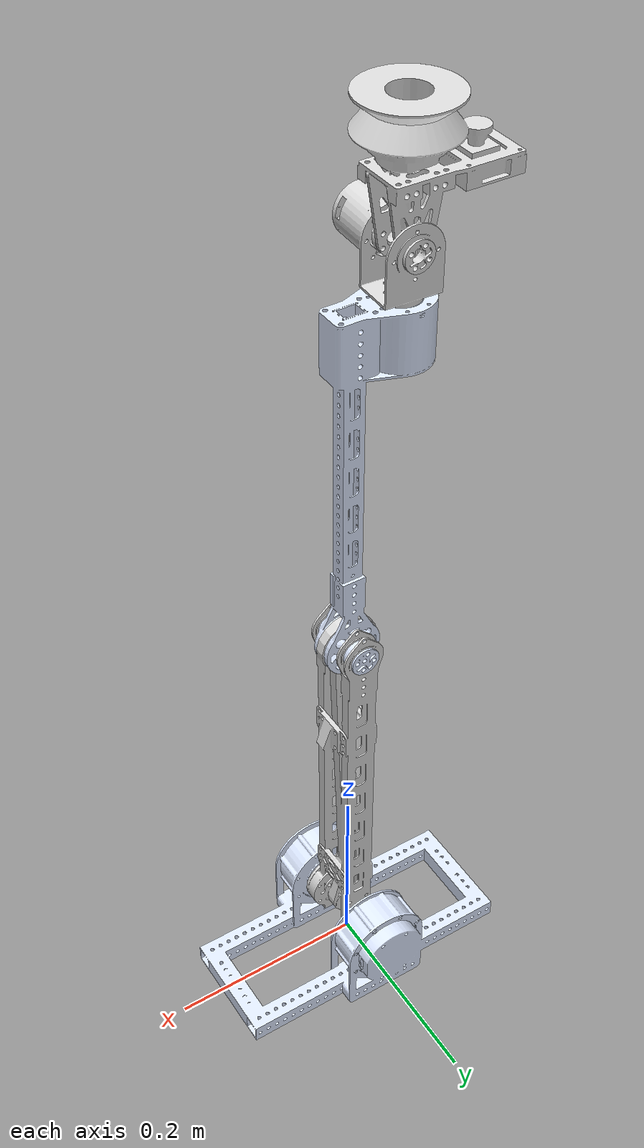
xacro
<?xml version="1.0"?>
<robot name="robotic_arm" xmlns:xacro="http://www.ros.org/wiki/xacro">

  <!-- ======================= 可配置参数（launch 里透传） ======================= -->
  <!-- MJCF 场景入口：scene_torque.xml 里 include 了力矩版本体 robotic_arm_torque.xml。
       力矩控制必须走这一份（motor 执行器）；position 版 scene.xml 仍保留作回退。 -->
  <xacro:arg name="mujoco_model" default="$(find kdl_tools)/model/scene_torque.xml"/>
  <!-- true = 不开 MuJoCo 图形窗口（远程/CI 调试用） -->
  <xacro:arg name="headless" default="false"/>
  <!-- 仿真时间 / 墙钟时间 的倍率；>0 时忽略 MuJoCo 窗口里的实时率滑块 -->
  <xacro:arg name="sim_speed_factor" default="1.0"/>

  <xacro:property name="mujoco_model_path" value="$(arg mujoco_model)"/>
  <xacro:property name="headless_flag" value="$(arg headless)"/>
  <xacro:property name="speed_factor" value="$(arg sim_speed_factor)"/>

  <!-- ======================= 1. 机器人本体（唯一真源） ======================= -->
  <xacro:include filename="$(find kdl_tools)/model/robotic_arm.urdf"/>

  <ros2_control name="arm_hw" type="system">
    <hardware>
      <!-- 必须与 mujoco_ros2_control 导出的插件类名完全一致 -->
      <plugin>mujoco_ros2_control/MujocoSystemInterface</plugin>

      <!-- MJCF 文件：插件用 mj_loadXML 读它，路径必须真实存在（不含 ~ 或环境变量） -->
      <param name="mujoco_model">${mujoco_model_path}</param>
      <param name="headless">${headless_flag}</param>
      <param name="sim_speed_factor">${speed_factor}</param>

    </hardware>

    <!-- 关节 ↔ 接口声明。四个关节接口完全相同，用宏展开避免手抄四遍。 -->
    <xacro:macro name="arm_joint" params="name">
      <joint name="${name}">
        <command_interface name="effort"/>
        <!-- 状态接口：插件每个控制周期从 mjData 里取 qpos / qvel / qfrc_actuator。
             position/velocity 供 kdl_effort_controller 做 PID 反馈；
             effort 供上层观测实际施加的力矩。 -->
        <state_interface name="position">
          <param name="initial_value">0.0</param>
        </state_interface>
        <state_interface name="velocity"/>
        <state_interface name="effort"/>
      </joint>
    </xacro:macro>

    <xacro:arm_joint name="joint1"/>
    <xacro:arm_joint name="joint2"/>
    <xacro:arm_joint name="joint3"/>
    <xacro:arm_joint name="joint4"/>

  </ros2_control>
</robot>

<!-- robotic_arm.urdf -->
<robot
  name="robotic_arm">
  <link
    name="base_link">
    <inertial>
      <origin
        xyz="-9.52016243616072E-15 -1.94289029309402E-16 0.0155191781345583"
        rpy="0 0 0" />
      <mass
        value="0.446116144380579" />
      <inertia
        ixx="0.000224798050494485"
        ixy="-2.18020596920716E-10"
        ixz="-7.25060202849681E-19"
        iyy="0.00138255058840876"
        iyz="-2.37030607855116E-20"
        izz="0.00122839549734328" />
    </inertial>
    <visual>
      <origin
        xyz="0 0 0"
        rpy="0 0 0" />
      <geometry>
        <mesh
          filename="package://kdl_tools/model/base_link.STL" />
      </geometry>
      <material
        name="">
        <color
          rgba="0.866666666666667 0.909803921568627 1 1" />
      </material>
    </visual>
    <collision>
      <origin
        xyz="0 0 0"
        rpy="0 0 0" />
      <geometry>
        <mesh
          filename="package://kdl_tools/model/base_link.STL" />
      </geometry>
    </collision>
  </link>
  <link
    name="link1">
    <inertial>
      <origin
        xyz="0.150031524729698 0.000191995103078102 0.0344853139404591"
        rpy="0 0 0" />
      <mass
        value="0.43178795433662" />
      <inertia
        ixx="5.96075244798525E-05"
        ixy="-4.07370544541132E-06"
        ixz="-1.02661773419375E-07"
        iyy="0.00272008694008324"
        iyz="2.06377860208473E-08"
        izz="0.00274655104559429" />
    </inertial>
    <visual>
      <origin
        xyz="0 0 0"
        rpy="0 0 0" />
      <geometry>
        <mesh
          filename="package://kdl_tools/model/link1.STL" />
      </geometry>
      <material
        name="">
        <color
          rgba="0.847058823529412 0.847058823529412 0.847058823529412 1" />
      </material>
    </visual>
    <collision>
      <origin
        xyz="0 0 0"
        rpy="0 0 0" />
      <geometry>
        <mesh
          filename="package://kdl_tools/model/link1.STL" />
      </geometry>
    </collision>
  </link>
  <joint
    name="joint1"
    type="revolute">
    <origin
      xyz="0 -0.04 0.05"
      rpy="1.5708 -1.57 -3.1416" />
    <parent
      link="base_link" />
    <child
      link="link1" />
    <axis
      xyz="0 0 1" />
    <limit
      lower="-1.57"
      upper="1.57"
      effort="50"
      velocity="10" />
  </joint>
  <link
    name="link2">
    <inertial>
      <origin
        xyz="0.205484012122796 -0.00549986783103082 0.0186225676272804"
        rpy="0 0 0" />
      <mass
        value="0.334546886253206" />
      <inertia
        ixx="9.93613919225459E-05"
        ixy="8.10971210408094E-10"
        ixz="-4.61050169328864E-09"
        iyy="0.000582195736690295"
        iyz="5.70676865975426E-09"
        izz="0.000556148638754133" />
    </inertial>
    <visual>
      <origin
        xyz="0 0 0"
        rpy="0 0 0" />
      <geometry>
        <mesh
          filename="package://kdl_tools/model/link2.STL" />
      </geometry>
      <material
        name="">
        <color
          rgba="0.866666666666667 0.909803921568627 1 1" />
      </material>
    </visual>
    <collision>
      <origin
        xyz="0 0 0"
        rpy="0 0 0" />
      <geometry>
        <mesh
          filename="package://kdl_tools/model/link2.STL" />
      </geometry>
    </collision>
  </link>
  <joint
    name="joint2"
    type="revolute">
    <origin
      xyz="0.374 0 0.0401"
      rpy="1.5708 0.0 0.0" />
    <parent
      link="link1" />
    <child
      link="link2" />
    <axis
      xyz="0 -1 0" />
    <limit
      lower="-3.0"
      upper="3.0"
      effort="50"
      velocity="10" />
  </joint>
  <link
    name="link3">
    <inertial>
      <origin
        xyz="0.00045693106510647 0.0120159218838146 0.0326962826671975"
        rpy="0 0 0" />
      <mass
        value="0.0818036914981158" />
      <inertia
        ixx="2.58771620872542E-05"
        ixy="1.52000429986836E-07"
        ixz="1.71868944443329E-08"
        iyy="3.05802737829727E-05"
        iyz="3.75710826679309E-07"
        izz="2.3497726615304E-05" />
    </inertial>
    <visual>
      <origin
        xyz="0 0 0"
        rpy="0 0 0" />
      <geometry>
        <mesh
          filename="package://kdl_tools/model/link3.STL" />
      </geometry>
      <material
        name="">
        <color
          rgba="0.847058823529412 0.847058823529412 0.847058823529412 1" />
      </material>
    </visual>
    <collision>
      <origin
        xyz="0 0 0"
        rpy="0 0 0" />
      <geometry>
        <mesh
          filename="package://kdl_tools/model/link3.STL" />
      </geometry>
    </collision>
  </link>
  <joint
    name="joint3"
    type="revolute">
    <origin
      xyz="0.3384 -0.0055 0.045"
      rpy="-1.5708 -1.5708 -1.5708" />
    <parent
      link="link2" />
    <child
      link="link3" />
    <axis
      xyz="0 0 1" />
    <limit
      lower="-3.14"
      upper="3.14"
      effort="50"
      velocity="10" />
  </joint>
  <link
    name="link4">
    <inertial>
      <origin
        xyz="0.0717111929893778 -0.0115466248724582 0.0198054015294321"
        rpy="0 0 0" />
      <mass
        value="0.269974503355347" />
      <inertia
        ixx="0.000158676016051897"
        ixy="7.59760657382795E-08"
        ixz="5.56013658017894E-08"
        iyy="0.000126778289759083"
        iyz="2.07997464437305E-09"
        izz="0.000154960757569298" />
    </inertial>
    <visual>
      <origin
        xyz="0 0 0"
        rpy="0 0 0" />
      <geometry>
        <mesh
          filename="package://kdl_tools/model/link4.STL" />
      </geometry>
      <material
        name="">
        <color
          rgba="0.847058823529412 0.847058823529412 0.847058823529412 1" />
      </material>
    </visual>
    <collision>
      <origin
        xyz="0 0 0"
        rpy="0 0 0" />
      <geometry>
        <mesh
          filename="package://kdl_tools/model/link4.STL" />
      </geometry>
    </collision>
  </link>
  <joint
    name="joint4"
    type="revolute">
    <origin
      xyz="0.00079568 0.018983 0.043"
      rpy="-1.5708 -1.5708 3.14" />
    <parent
      link="link3" />
    <child
      link="link4" />
    <axis
      xyz="0 0 1" />
    <limit
      lower="-1.57"
      upper="1.57"
      effort="50"
      velocity="10" />
  </joint>
</robot>
